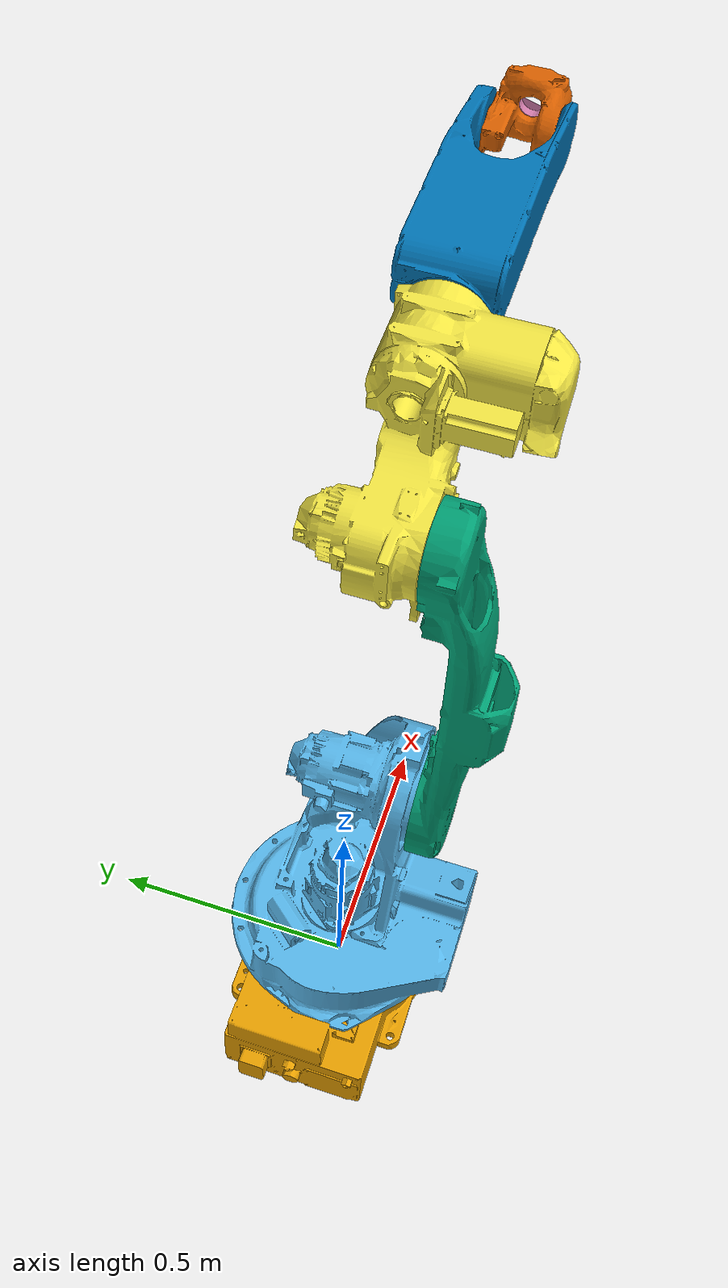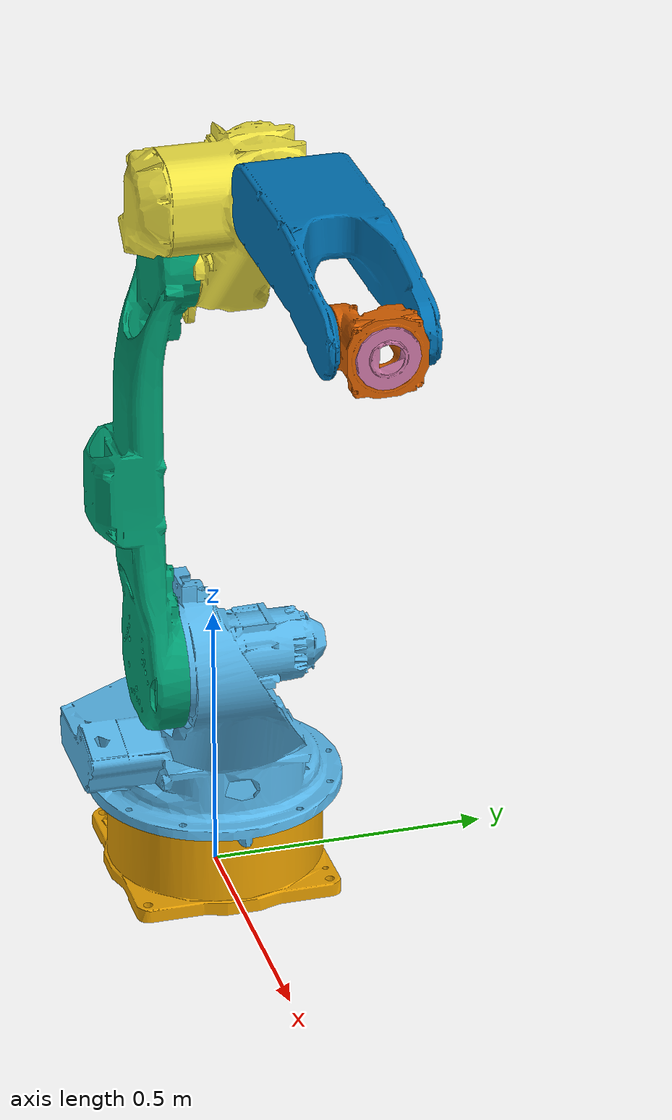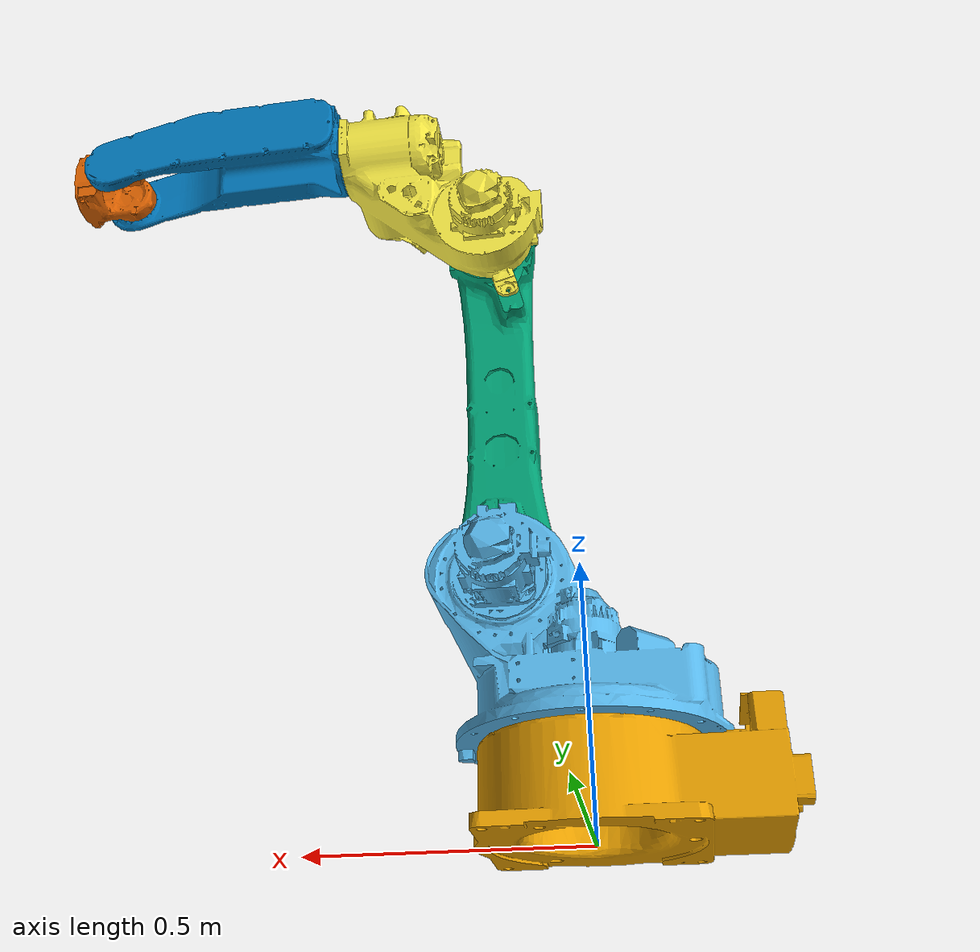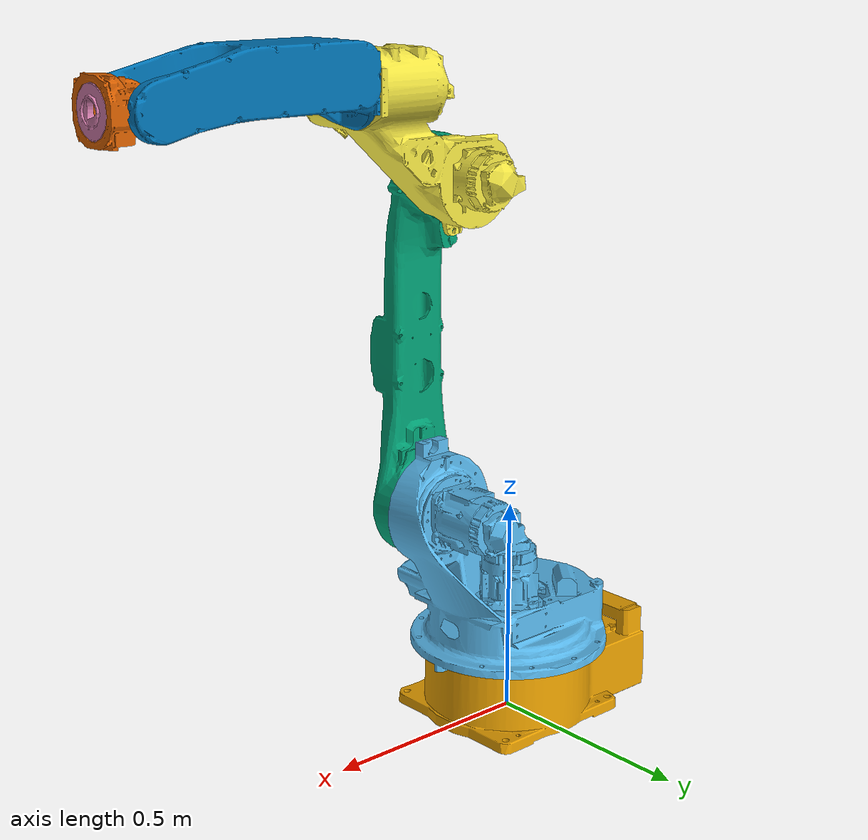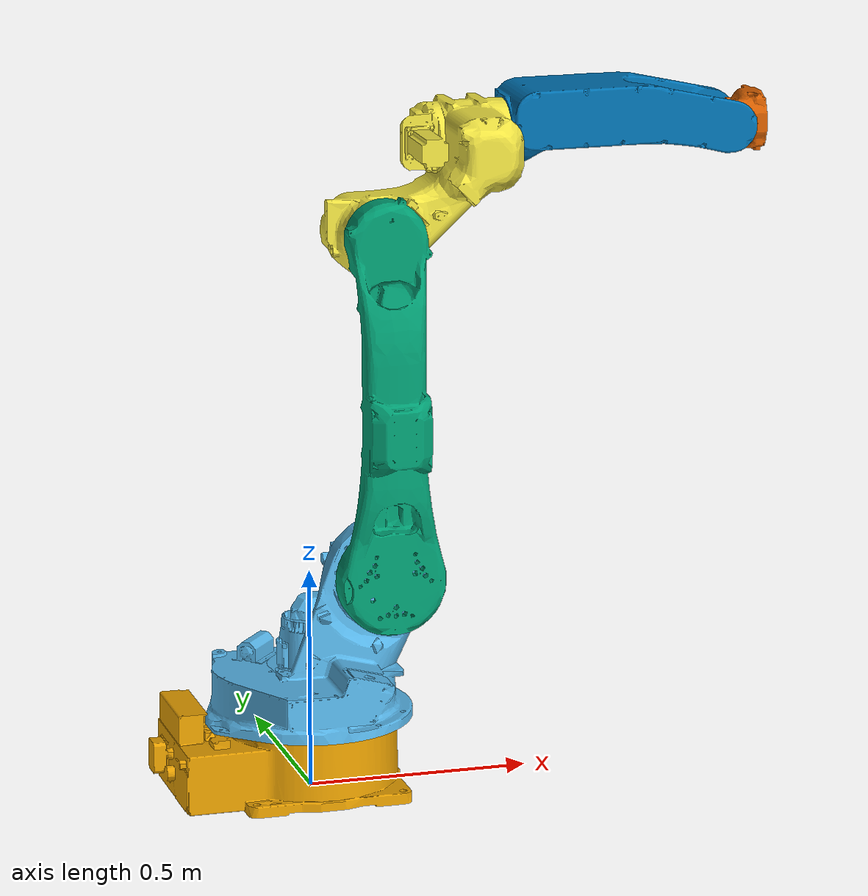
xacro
<?xml version="1.0"?>
<robot xmlns:xacro="http://www.ros.org/wiki/xacro" name="motoman_gp25">
  <xacro:arg name="initial_positions_file" default="initial_positions.yaml" />

  <!-- Import motoman_gp25 urdf file -->
  <xacro:include filename="$(find motoman_gp25_support)/urdf/gp25.xacro" />

  <!-- Import control_xacro -->
  <xacro:include filename="motoman_gp25.ros2_control.xacro" />

  <xacro:motoman_gp25_ros2_control name="FakeSystem" initial_positions_file="$(arg initial_positions_file)"/>

  <gazebo reference="base_link"/>
  <gazebo>
    <plugin filename="libign_ros2_control-system.so" name="ign_ros2_control::IgnitionROS2ControlPlugin">
      <parameters>$(find motoman_gp25_moveit_config)/config/ros2_controllers.yaml</parameters>
      <controller_manager_node_name>controller_manager</controller_manager_node_name>
    </plugin>
  </gazebo>

</robot>

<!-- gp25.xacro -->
<robot name="motoman_gp25" xmlns:xacro="http://ros.org/wiki/xacro">
	<xacro:include filename="$(find motoman_gp25_support)/urdf/gp25/gp25_macro.xacro" />
	<xacro:motoman_gp25 prefix=""/>

	<xacro:include filename="$(find motoman_gp25_support)/urdf/gp25.ros2_control.xacro" />
    <xacro:motoman_gp25_ros2_control name="motoman_gp25" prefix=""/>

    <!-- create link fixed to the "world" -->
    <!--link name="world" /-->

    <gazebo reference="base_link"/>
    <gazebo>
      <plugin filename="libign_ros2_control-system.so" name="ign_ros2_control::IgnitionROS2ControlPlugin">
        <parameters>$(find gp25_bringup)/config/ros2_controllers.yaml</parameters>
        <controller_manager_node_name>controller_manager</controller_manager_node_name>
      </plugin>
    </gazebo>
</robot>

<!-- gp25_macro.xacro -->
<robot xmlns:xacro="http://ros.org/wiki/xacro">
<xacro:macro name="motoman_gp25" params="prefix">
    <xacro:include filename="$(find motoman_resources)/urdf/common_materials.xacro"/>

    <!-- link list -->
    <link name="${prefix}base_link">
        <visual>
            <geometry>
                <mesh filename="package://motoman_gp25_support/meshes/visual/base_link.stl"/>
            </geometry>
            <xacro:material_yaskawa_blue/>
        </visual>
        <collision>
            <geometry>
                <mesh filename="package://motoman_gp25_support/meshes/collision/base_link.stl"/>
            </geometry>
        </collision>
        <inertial>
            <mass value="100"/>
            <inertia ixx="1" ixy="0" ixz="0" iyy="1" iyz="0" izz="1"/>
        </inertial>
    </link>
    <link name="${prefix}link_1_s">
        <visual>
            <geometry>
                <mesh filename="package://motoman_gp25_support/meshes/visual/link_1_s.stl"/>
            </geometry>
            <xacro:material_yaskawa_blue/>
        </visual>
        <collision>
            <geometry>
                <mesh filename="package://motoman_gp25_support/meshes/collision/link_1_s.stl"/>
            </geometry>
        </collision>
        <inertial>
            <mass value="50"/>
            <inertia ixx="1" ixy="0" ixz="0" iyy="1" iyz="0" izz="1"/>
        </inertial>
    </link>
    <link name="${prefix}link_2_l">
        <visual>
            <geometry>
                <mesh filename="package://motoman_gp25_support/meshes/visual/link_2_l.stl"/>
            </geometry>
            <xacro:material_yaskawa_blue/>
        </visual>
        <collision>
            <geometry>
                <mesh filename="package://motoman_gp25_support/meshes/collision/link_2_l.stl"/>
            </geometry>
        </collision>
        <inertial>
            <mass value="25"/>
            <inertia ixx="1" ixy="0" ixz="0" iyy="1" iyz="0" izz="1"/>
        </inertial>
    </link>
    <link name="${prefix}link_3_u">
        <visual>
            <geometry>
                <mesh filename="package://motoman_gp25_support/meshes/visual/link_3_u.stl"/>
            </geometry>
            <xacro:material_yaskawa_blue/>
        </visual>
        <collision>
            <geometry>
                <mesh filename="package://motoman_gp25_support/meshes/collision/link_3_u.stl"/>
            </geometry>
        </collision>
        <inertial>
            <mass value="12"/>
            <inertia ixx="1" ixy="0" ixz="0" iyy="1" iyz="0" izz="1"/>
        </inertial>
    </link>
    <link name="${prefix}link_4_r">
        <visual>
            <geometry>
                <mesh filename="package://motoman_gp25_support/meshes/visual/link_4_r.stl"/>
            </geometry>
            <xacro:material_yaskawa_blue/>
        </visual>
        <collision>
            <geometry>
                <mesh filename="package://motoman_gp25_support/meshes/collision/link_4_r.stl"/>
            </geometry>
        </collision>
        <inertial>
            <mass value="6"/>
            <inertia ixx="1" ixy="0" ixz="0" iyy="1" iyz="0" izz="1"/>
        </inertial>
    </link>
    <link name="${prefix}link_5_b">
        <visual>
            <geometry>
                <mesh filename="package://motoman_gp25_support/meshes/visual/link_5_b.stl"/>
            </geometry>
            <xacro:material_yaskawa_blue/>
        </visual>
        <collision>
            <geometry>
                <mesh filename="package://motoman_gp25_support/meshes/collision/link_5_b.stl"/>
            </geometry>
        </collision>
        <inertial>
            <mass value="3"/>
            <inertia ixx="1" ixy="0" ixz="0" iyy="1" iyz="0" izz="1"/>
        </inertial>
    </link>
    <link name="${prefix}link_6_t">
        <visual>
            <geometry>
                <mesh filename="package://motoman_gp25_support/meshes/visual/link_6_t.stl"/>
            </geometry>
            <xacro:material_yaskawa_blue/>
        </visual>
        <collision>
            <geometry>
                <mesh filename="package://motoman_gp25_support/meshes/collision/link_6_t.stl"/>
            </geometry>
        </collision>
        <inertial>
            <mass value="1"/>
            <inertia ixx="1" ixy="0" ixz="0" iyy="1" iyz="0" izz="1"/>
        </inertial>
    </link>
    <link name="${prefix}tool0"/>
    <!-- end of link list -->

    <!-- joint list -->
    <joint name="${prefix}joint_1_s" type="revolute">
        <parent link="${prefix}base_link"/>
        <child link="${prefix}link_1_s"/>
        <origin xyz="0 0 0.505" rpy="0 0 0" />
        <axis xyz="0 0 1" />
        <limit lower="${radians(-180)}" upper="${radians(180)}" effort="3087" velocity="${radians(210)}"/>
    </joint>
    <joint name="${prefix}joint_2_l" type="revolute">
        <parent link="${prefix}link_1_s"/>
        <child link="${prefix}link_2_l"/>
        <origin xyz="0.150 0 0" rpy="0 0 0" />
        <axis xyz="0 1 0" />
        <limit lower="${radians(-105)}" upper="${radians(155)}" effort="3087" velocity="${radians(210)}"/>
    </joint>
    <joint name="${prefix}joint_3_u" type="revolute">
        <parent link="${prefix}link_2_l"/>
        <child link="${prefix}link_3_u"/>
        <origin xyz="0 0 0.760" rpy="0 0 0" />
        <axis xyz="0 -1 0" />
        <limit lower="${radians(-86)}" upper="${radians(160)}" effort="926.1" velocity="${radians(265)}"/>
    </joint>
    <joint name="${prefix}joint_4_r" type="revolute">
        <parent link="${prefix}link_3_u"/>
        <child link="${prefix}link_4_r"/>
        <origin xyz="0 0 0.200" rpy="0 0 0" />
        <axis xyz="-1 0 0" />
        <limit lower="${radians(-200)}" upper="${radians(200)}" effort="88.2" velocity="${radians(420)}"/>
    </joint>
    <joint name="${prefix}joint_5_b" type="revolute">
        <parent link="${prefix}link_4_r"/>
        <child link="${prefix}link_5_b"/>
        <origin xyz="0.795 0 0" rpy="0 0 0" />
        <axis xyz="0 -1 0" />
        <limit lower="${radians(-155)}" upper="${radians(150)}" effort="70.56" velocity="${radians(420)}"/>
    </joint>
    <joint name="${prefix}joint_6_t" type="revolute">
        <parent link="${prefix}link_5_b"/>
        <child link="${prefix}link_6_t"/>
        <origin xyz="0 0 0" rpy="0 0 0" />
        <axis xyz="-1 0 0" />
        <limit lower="${radians(-455)}" upper="${radians(455)}" effort="50.31" velocity="${radians(885)}"/>
    </joint>
    <joint name="${prefix}joint_6_t-tool0" type="fixed">
        <origin xyz="0.100 0 0" rpy="3.1415926 -1.570796 0"/>
        <parent link="${prefix}link_6_t"/>
        <child link="${prefix}tool0"/>
    </joint>
    <!-- end of joint list -->

    <!-- ROS base_link to Robot Manufacturer World Coordinates transform -->
    <link name="${prefix}base" />
    <joint name="${prefix}base_link-base" type="fixed">
        <origin xyz="0 0 0.505" rpy="0 0 0"/>
        <parent link="${prefix}base_link"/>
        <child link="${prefix}base"/>
    </joint>

    </xacro:macro>
</robot>
